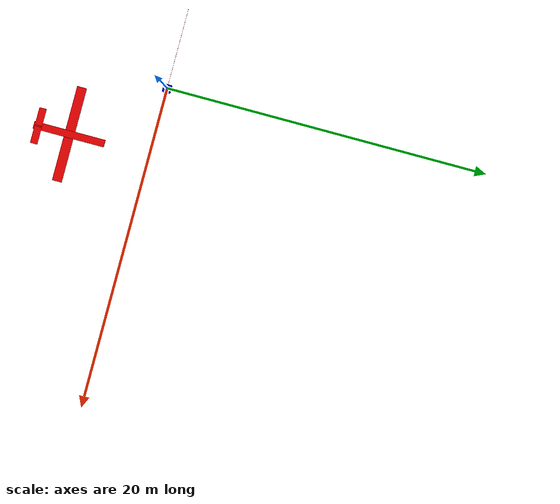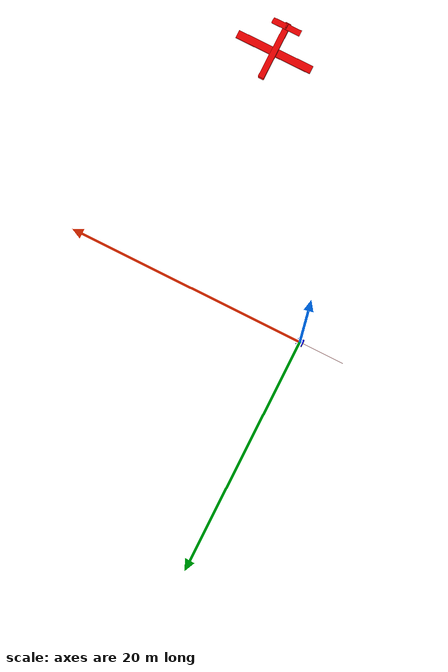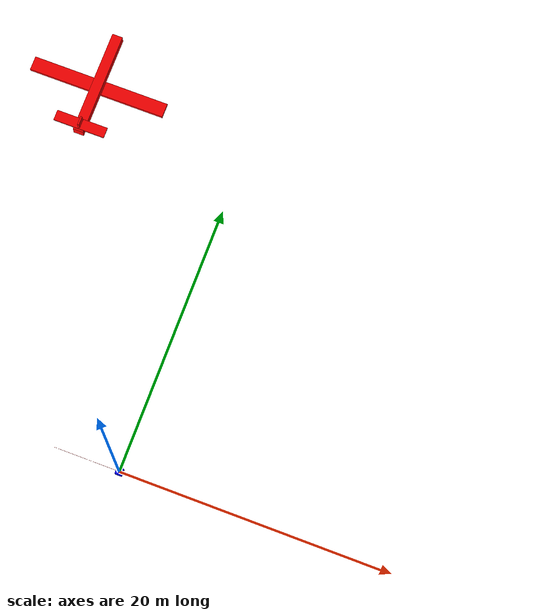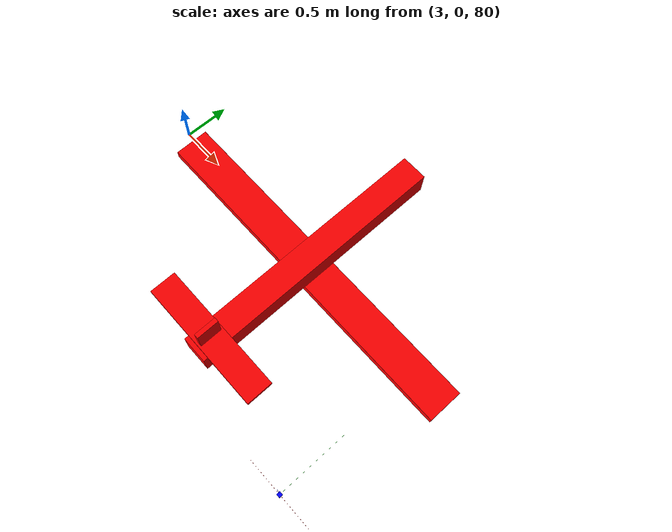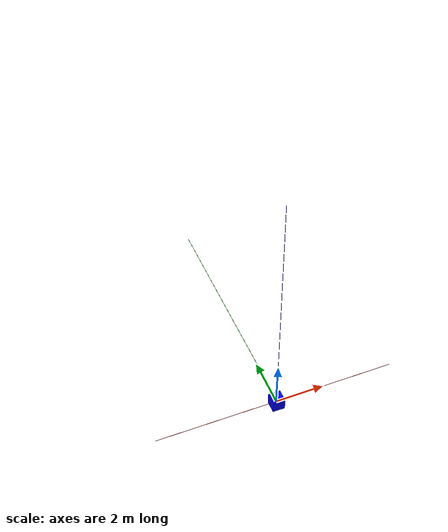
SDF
<sdf version="1.9">
 <world name="iris_runway">
  <physics name="1ms" type="ode">
   <max_step_size>0.001</max_step_size>
   <real_time_factor>1.0</real_time_factor>
   <real_time_update_rate>1000</real_time_update_rate>
   <ode>
    <solver><type>quick</type><iters>10</iters><precon_iters>0</precon_iters><sor>1.4</sor></solver>
    <constraints>
     <cfm>0.0</cfm>
     <erp>0.2</erp>
     <contact_max_correcting_vel>100.0</contact_max_correcting_vel>
     <contact_surface_layer>0.001</contact_surface_layer>
    </constraints>
   </ode>
  </physics>
  <wind><linear_velocity>0 0 0</linear_velocity><dynamic_wind>true</dynamic_wind></wind>
  <plugin filename="gz-sim-wind-system" name="gz::sim::systems::Wind">
   <wind_topic>/world/iris_runway/wind</wind_topic>
   <dynamic_wind>true</dynamic_wind>
  </plugin>
  <plugin filename="gz-sim-wind-effects-system" name="gz::sim::systems::WindEffects">
   <force_approximation_scaling_factor>1</force_approximation_scaling_factor>
  </plugin>
  <plugin filename="gz-sim-physics-system" name="gz::sim::systems::Physics"/>
  <plugin filename="gz-sim-sensors-system" name="gz::sim::systems::Sensors">
   <render_engine>ogre2</render_engine>
  </plugin>
  <plugin filename="gz-sim-user-commands-system" name="gz::sim::systems::UserCommands"/>
  <plugin filename="gz-sim-scene-broadcaster-system" name="gz::sim::systems::SceneBroadcaster"/>
  <plugin filename="gz-sim-imu-system" name="gz::sim::systems::Imu"/>
  <plugin filename="gz-sim-navsat-system" name="gz::sim::systems::NavSat"/>
  <scene><ambient>1.0 1.0 1.0</ambient><background>0.8 0.8 0.8</background></scene>
  <spherical_coordinates>
   <latitude_deg>-35.363262</latitude_deg>
   <longitude_deg>149.165237</longitude_deg>
   <elevation>584</elevation>
   <heading_deg>0</heading_deg>
   <surface_model>EARTH_WGS84</surface_model>
  </spherical_coordinates>
  <light type="directional" name="sun">
   <pose>0 0 10 0 0 0</pose>
   <diffuse>0.8 0.8 0.8 1</diffuse>
   <specular>0.8 0.8 0.8 1</specular>
   <attenuation>
    <range>1000</range>
    <constant>0.9</constant>
    <linear>0.01</linear>
    <quadratic>0.001</quadratic>
   </attenuation>
   <direction>-0.5 0.1 -0.9</direction>
  </light>
  <model name="axes">
   <static>1</static>
   <link name="link">
    <visual name="r">
     <cast_shadows>0</cast_shadows>
     <geometry><box><size>10 0.01 0.01</size></box></geometry>
     <material>
      <ambient>1 0 0 0.8</ambient>
      <diffuse>1 0 0 0.8</diffuse>
      <emissive>1 0 0 0.8</emissive>
      <specular>0.5 0.5 0.5 0.8</specular>
     </material>
    </visual>
    <visual name="g">
     <cast_shadows>0</cast_shadows>
     <pose>0 5 0.1 0 0 0</pose>
     <geometry><box><size>0.01 10 0.01</size></box></geometry>
     <material>
      <ambient>0 1 0 0.8</ambient>
      <diffuse>0 1 0 0.8</diffuse>
      <emissive>0 1 0 0.8</emissive>
      <specular>0.5 0.5 0.5 0.8</specular>
     </material>
    </visual>
    <visual name="b">
     <cast_shadows>0</cast_shadows>
     <pose>0 0 5.1 0 0 0</pose>
     <geometry><box><size>0.01 0.01 10</size></box></geometry>
     <material>
      <ambient>0 0 1 0.8</ambient>
      <diffuse>0 0 1 0.8</diffuse>
      <emissive>0 0 1 0.8</emissive>
      <specular>0.5 0.5 0.5 0.8</specular>
     </material>
    </visual>
    <sensor name="navsat_sensor" type="navsat"><always_on>1</always_on><update_rate>1</update_rate></sensor>
   </link>
  </model>
  <model name="simple_airplane">
   <pose>5 0 80 0 0 1.5708</pose>
   <static>false</static>
   <link name="airplane_link">
    <enable_wind>true</enable_wind>
    <gravity>false</gravity>
    <visual name="fuselage_visual">
     <geometry><box><size>3.0 0.3 0.3</size></box></geometry>
     <material><ambient>1 0 0 1</ambient><diffuse>1 0 0 1</diffuse><specular>0.5 0.5 0.5 1</specular></material>
    </visual>
    <visual name="wing_body">
     <pose>0 0 -0.2 0 0 0</pose>
     <geometry><box><size>0.4 3.998 0.1</size></box></geometry>
     <material><ambient>1 0 0 1</ambient><diffuse>1 0 0 1</diffuse><specular>0.5 0.5 0.5 1</specular></material>
    </visual>
    <visual name="wing_left_cap">
     <pose>0 -1.9995 -0.2 0 0 0</pose>
     <geometry><box><size>0.4 0.001 0.1</size></box></geometry>
     <material><ambient>1 0 0 1</ambient><diffuse>1 0 0 1</diffuse><specular>0.5 0.5 0.5 1</specular></material>
    </visual>
    <visual name="wing_right_cap">
     <pose>0 1.9995 -0.2 0 0 0</pose>
     <geometry><box><size>0.4 0.001 0.1</size></box></geometry>
     <material><ambient>1 0 0 1</ambient><diffuse>1 0 0 1</diffuse><specular>0.5 0.5 0.5 1</specular></material>
    </visual>
    <visual name="wing_front_cap">
     <pose>0.2 0 -0.2 0 0 0</pose>
     <geometry><box><size>0.001 4.0 0.1</size></box></geometry>
     <material><ambient>1 0 0 1</ambient><diffuse>1 0 0 1</diffuse><specular>0.5 0.5 0.5 1</specular></material>
    </visual>
    <visual name="wing_back_cap">
     <pose>-0.2 0 -0.2 0 0 0</pose>
     <geometry><box><size>0.001 4.0 0.1</size></box></geometry>
     <material><ambient>1 0 0 1</ambient><diffuse>1 0 0 1</diffuse><specular>0.5 0.5 0.5 1</specular></material>
    </visual>
    <visual name="tail_horizontal">
     <pose>-1.3 0 0.15 0 0 0</pose>
     <geometry><box><size>0.3 1.5 0.05</size></box></geometry>
     <material><ambient>1 0 0 1</ambient><diffuse>1 0 0 1</diffuse><specular>0.5 0.5 0.5 1</specular></material>
    </visual>
    <visual name="tail_vertical">
     <pose>-1.3 0 0.3 0 0 0</pose>
     <geometry><box><size>0.25 0.05 0.3</size></box></geometry>
     <material><ambient>1 0 0 1</ambient><diffuse>1 0 0 1</diffuse><specular>0.5 0.5 0.5 1</specular></material>
    </visual>
    <collision name="airplane_collision"><geometry><box><size>3.0 4.0 0.5</size></box></geometry></collision>
   </link>
   <plugin filename="gz-sim-velocity-control-system" name="gz::sim::systems::VelocityControl">
    <topic>/model/simple_airplane/cmd_vel</topic>
   </plugin>
  </model>
  <model name="launch_pad">
   <plugin filename="/home/amd-user/projects/my_drone_sim/plugins/turret_plugin/build/libTurretPlugin.so" name="gz::sim::v8::systems::TurretPlugin"/>
   <link name="pad_link">
    <visual name="visual">
     <geometry><box><size>0.5 0.5 0.5</size></box></geometry>
     <material><ambient>0 0 1 1</ambient><diffuse>0 0 1 1</diffuse><specular>0.2 0.2 0.2 1</specular></material>
    </visual>
    <collision name="collision">
     <geometry><box><size>0.5 0.5 0.5</size></box></geometry>
     <surface>
      <friction><ode><mu>100000.0</mu><mu2>100000.0</mu2></ode></friction>
      <contact><ode><max_vel>100.0</max_vel><min_depth>0.001</min_depth></ode></contact>
     </surface>
    </collision>
   </link>
  </model>
 </world>
</sdf>
